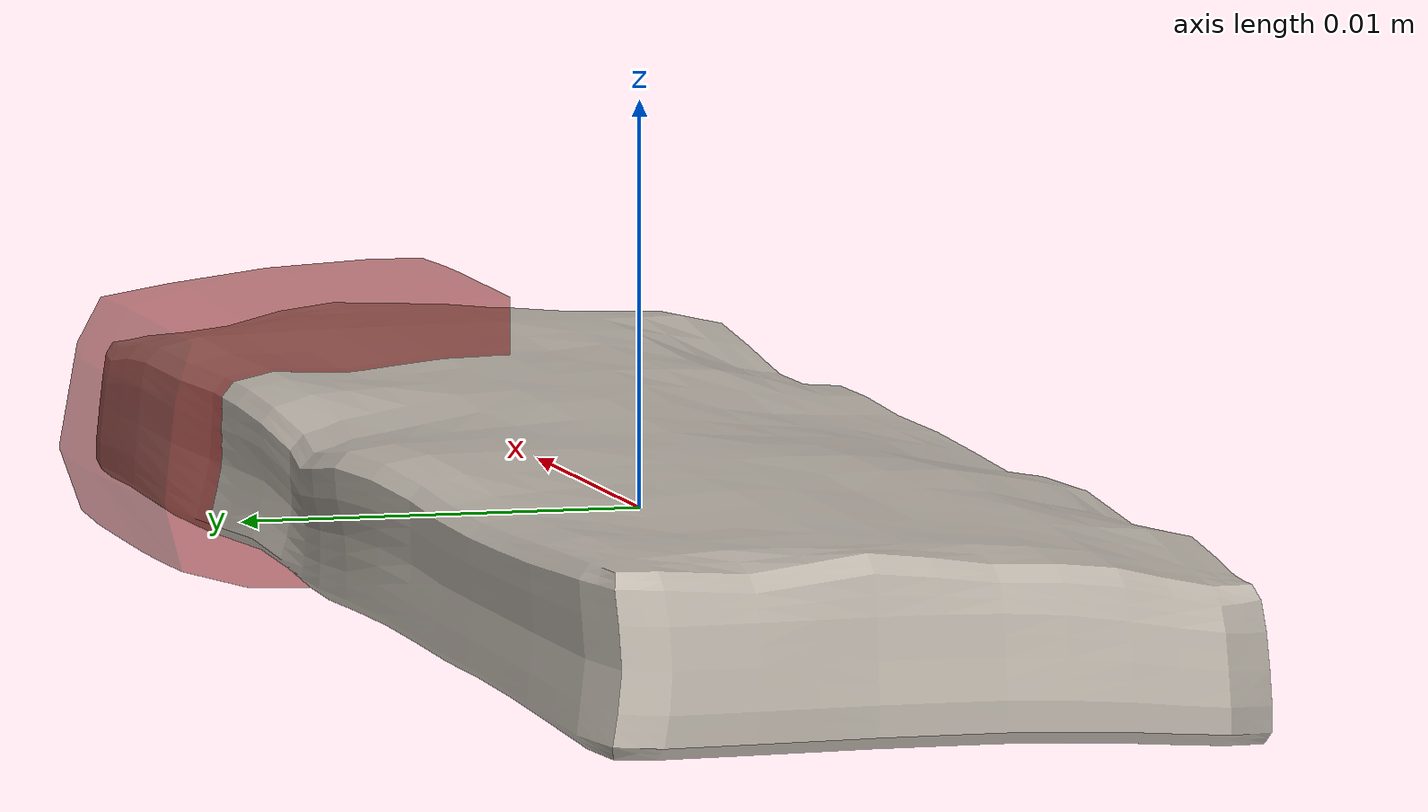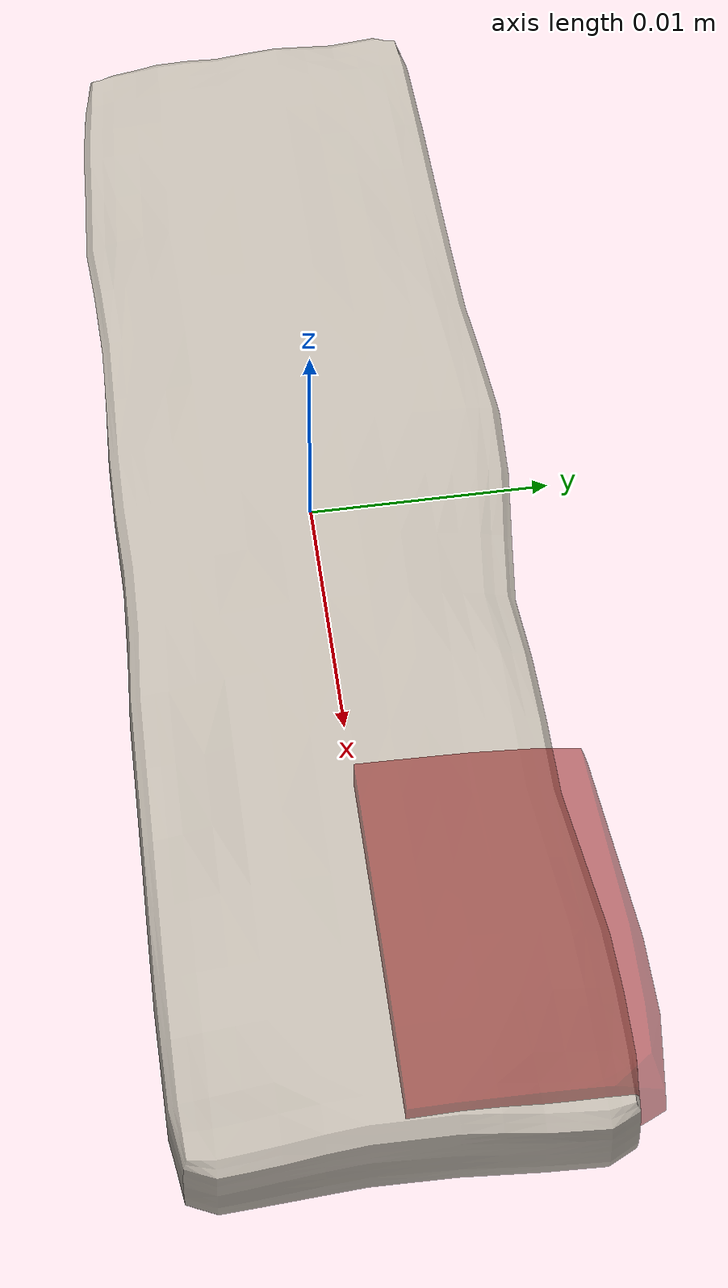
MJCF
<?xml version='1.0' encoding='UTF-8'?>
<mujoco model="model">
  <compiler angle="radian"/>
  <asset>
    <mesh file="visual/CreamCheese007.obj" name="CreamCheese007_vis"/>
    <texture file="visual/T_BC001.png" name="CreamCheese007_material" type="2d"/>
    <material name="CreamCheese007_material" rgba="1 1 1 1.0" texture="CreamCheese007_material" shininess="-35.000003814697266" specular="0.3103448502657381"/>
    <mesh file="collision/CreamCheese007001.obj" name="CreamCheese007001_mesh"/>
  </asset>
  <default>
    <default class="visual">
      <geom conaffinity="0" contype="0" group="1" type="mesh"/>
    </default>
    <default class="collision">
      <geom group="0" rgba="0.5 0 0 0.5"/>
    </default>
    <default class="spawn">
      <geom group="0" rgba="1 1 1 0.5" contype="0" conaffinity="0"/>
      <site group="0" rgba="1 1 1 0.5"/>
    </default>
    <default class="region">
      <geom group="1" conaffinity="0" contype="0" rgba="0 1 0 0"/>
    </default>
  </default>
  <worldbody>
    <body>
      <body name="object">
        <geom mesh="CreamCheese007_vis" type="mesh" solimp="0.998 0.998 0.001" solref="0.001 1" density="100" friction="0.95 0.3 0.1" class="visual" material="CreamCheese007_material"/>
        <geom mesh="CreamCheese007001_mesh" type="mesh" class="collision"/>
        <geom class="region" name="reg_bbox" type="box" pos="7.59499999999925e-06 0.00013666000000000028 -6.691999999999983e-05" size="0.02740335 0.00905266 0.0030628499999999998"/>
      </body>
    </body>
  </worldbody>
  <actuator/>
</mujoco>
